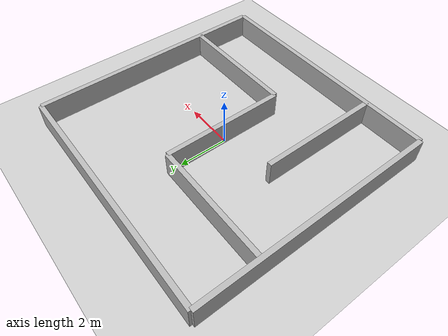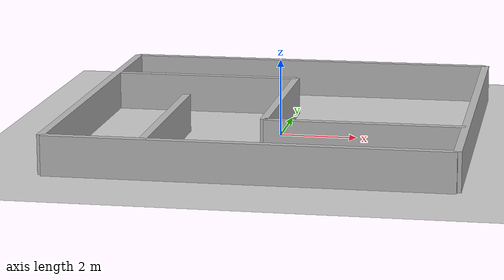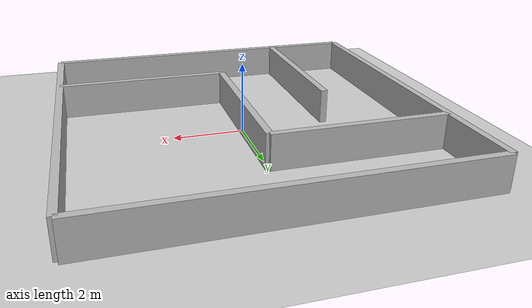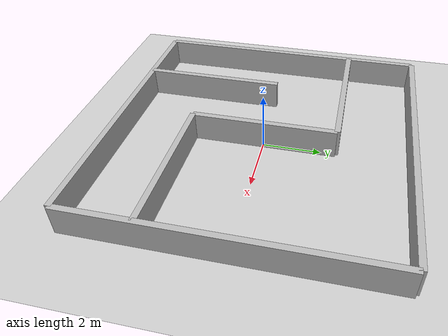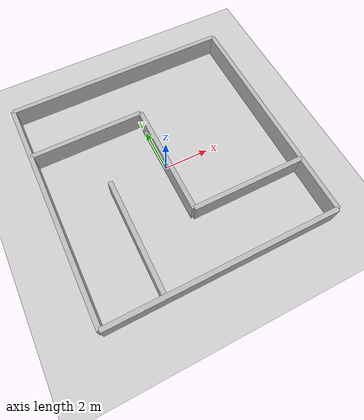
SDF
<?xml version="1.0" ?>
<sdf version="1.6">
  <world name="maze_world">

    <!-- ==================== PHYSICS ==================== -->

    <physics type="ode">
      <real_time_update_rate>1000</real_time_update_rate>
      <max_step_size>0.001</max_step_size>
    </physics>

    <gravity>0 0 -9.81</gravity>

    <!-- ==================== GROUND ==================== -->

    <model name="ground">
      <static>true</static>

      <link name="ground_link">

        <collision name="ground_collision">
          <geometry>
            <plane>
              <normal>0 0 1</normal>
              <size>30 30</size>
            </plane>
          </geometry>
        </collision>

        <visual name="ground_visual">
          <geometry>
            <plane>
              <normal>0 0 1</normal>
              <size>30 30</size>
            </plane>
          </geometry>
        </visual>

      </link>
    </model>

    <!-- ==================== OUTER WALLS ==================== -->

    <model name="wall_left">
      <static>true</static>
      <pose>-5 0 0.5 0 0 0</pose>

      <link name="link">
        <collision name="collision">
          <geometry>
            <box>
              <size>0.2 10 1</size>
            </box>
          </geometry>
        </collision>

        <visual name="visual">
          <geometry>
            <box>
              <size>0.2 10 1</size>
            </box>
          </geometry>
        </visual>
      </link>
    </model>

    <model name="wall_right">
      <static>true</static>
      <pose>5 0 0.5 0 0 0</pose>

      <link name="link">
        <collision name="collision">
          <geometry>
            <box>
              <size>0.2 10 1</size>
            </box>
          </geometry>
        </collision>

        <visual name="visual">
          <geometry>
            <box>
              <size>0.2 10 1</size>
            </box>
          </geometry>
        </visual>
      </link>
    </model>

    <model name="wall_back">
      <static>true</static>
      <pose>0 -5 0.5 0 0 0</pose>

      <link name="link">
        <collision name="collision">
          <geometry>
            <box>
              <size>10 0.2 1</size>
            </box>
          </geometry>
        </collision>

        <visual name="visual">
          <geometry>
            <box>
              <size>10 0.2 1</size>
            </box>
          </geometry>
        </visual>
      </link>
    </model>

    <model name="wall_front">
      <static>true</static>
      <pose>0 5 0.5 0 0 0</pose>

      <link name="link">
        <collision name="collision">
          <geometry>
            <box>
              <size>10 0.2 1</size>
            </box>
          </geometry>
        </collision>

        <visual name="visual">
          <geometry>
            <box>
              <size>10 0.2 1</size>
            </box>
          </geometry>
        </visual>
      </link>
    </model>

    <!-- ==================== INNER MAZE ==================== -->

    <model name="wall_1">
      <static>true</static>
      <pose>-2.5 2.5 0.5 0 0 0</pose>

      <link name="link">

        <collision name="collision">
          <geometry>
            <box>
              <size>5 0.2 1</size>
            </box>
          </geometry>
        </collision>

        <visual name="visual">
          <geometry>
            <box>
              <size>5 0.2 1</size>
            </box>
          </geometry>
        </visual>

      </link>
    </model>

    <model name="wall_2">
      <static>true</static>
      <pose>0 0 0.5 0 0 0</pose>

      <link name="link">

        <collision name="collision">
          <geometry>
            <box>
              <size>0.2 5 1</size>
            </box>
          </geometry>
        </collision>

        <visual name="visual">
          <geometry>
            <box>
              <size>0.2 5 1</size>
            </box>
          </geometry>
        </visual>

      </link>
    </model>

    <model name="wall_3">
      <static>true</static>
      <pose>2.5 -2.5 0.5 0 0 0</pose>

      <link name="link">

        <collision name="collision">
          <geometry>
            <box>
              <size>5 0.2 1</size>
            </box>
          </geometry>
        </collision>

        <visual name="visual">
          <geometry>
            <box>
              <size>5 0.2 1</size>
            </box>
          </geometry>
        </visual>

      </link>
    </model>

    <model name="wall_4">
      <static>true</static>
      <pose>-2.5 -2.5 0.5 0 0 0</pose>

      <link name="link">

        <collision name="collision">
          <geometry>
            <box>
              <size>0.2 5 1</size>
            </box>
          </geometry>
        </collision>

        <visual name="visual">
          <geometry>
            <box>
              <size>0.2 5 1</size>
            </box>
          </geometry>
        </visual>

      </link>
    </model>

    <!-- ==================== LIGHT ==================== -->

    <light name="sun" type="directional">
      <pose>0 0 10 0 0 0</pose>
      <direction>-0.5 0.5 -1</direction>
      <diffuse>1 1 1 1</diffuse>
      <specular>0.2 0.2 0.2 1</specular>
    </light>

  </world>
</sdf>
